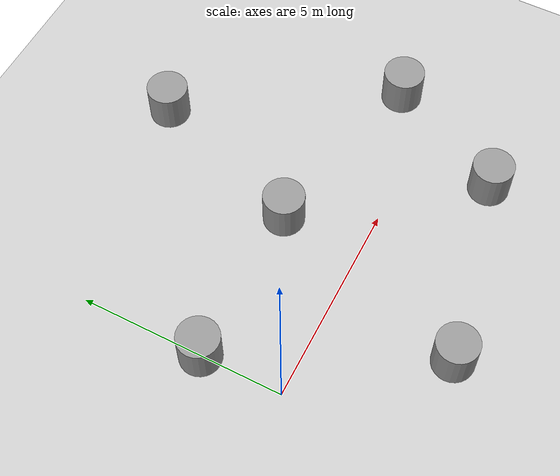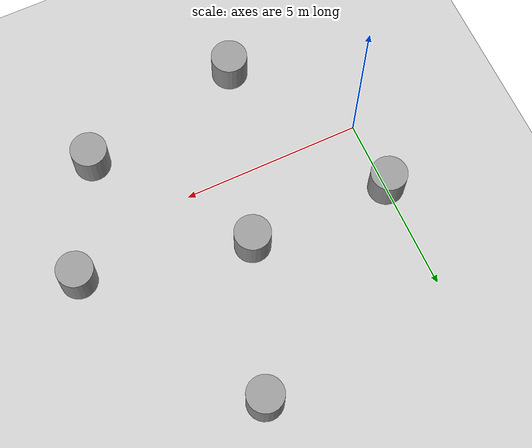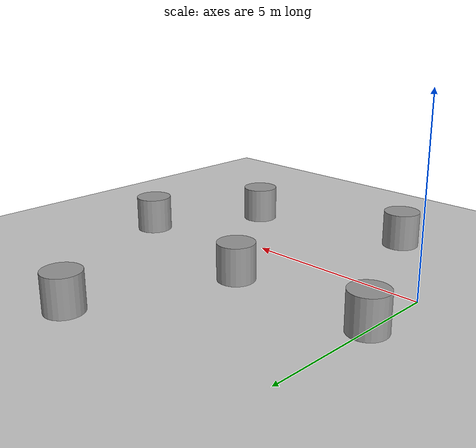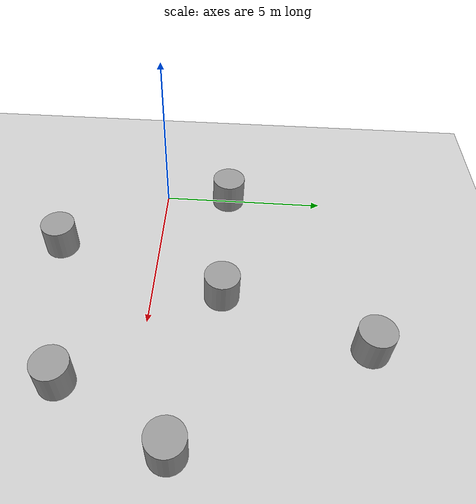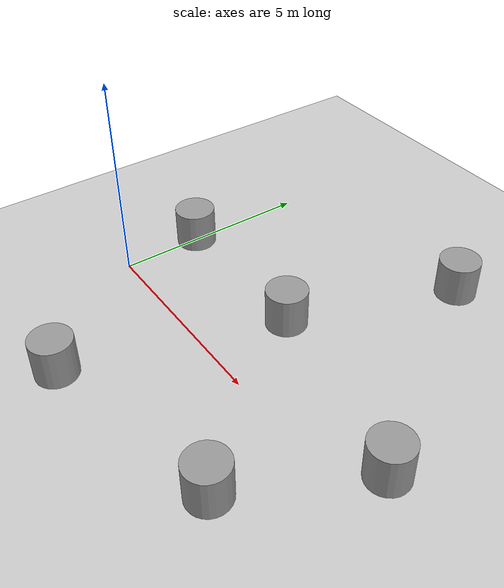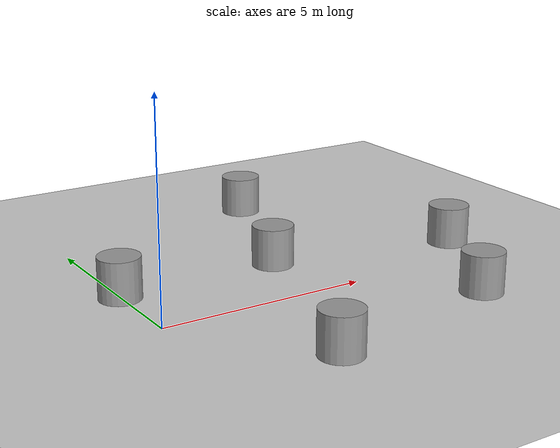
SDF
<sdf version="1.4">
 <world name="default">
  <light name="sun" type="directional">
   <pose>0 0 10 0 -0 0</pose>
   <diffuse>0.8 0.8 0.8 1</diffuse>
   <specular>0.2 0.2 0.2 1</specular>
   <attenuation>
    <range>1000</range>
    <constant>0.9</constant>
    <linear>0.01</linear>
    <quadratic>0.001</quadratic>
   </attenuation>
   <direction>-0.5 0.1 -0.9</direction>
  </light>
  <model name="ground_plane">
   <static>1</static>
   <link name="link">
    <collision name="collision">
     <geometry><plane><normal>0 0 1</normal><size>100 100</size></plane></geometry>
     <surface><friction><ode><mu>100</mu><mu2>50</mu2></ode></friction></surface>
    </collision>
    <visual name="visual">
     <cast_shadows>0</cast_shadows>
     <geometry><plane><normal>0 0 1</normal><size>100 100</size></plane></geometry>
     <material>
      <script><uri>file://media/materials/scripts/gazebo.material</uri><name>Gazebo/Grey</name></script>
     </material>
    </visual>
    <velocity_decay><linear>0</linear><angular>0</angular></velocity_decay>
   </link>
  </model>
  <physics type="ode">
   <max_step_size>0.001</max_step_size>
   <real_time_factor>1</real_time_factor>
   <real_time_update_rate>1000</real_time_update_rate>
   <gravity>0 0 -9.8</gravity>
  </physics>
  <scene><ambient>0.4 0.4 0.4 1</ambient><background>0.7 0.7 0.7 1</background><shadows>1</shadows></scene>
  <spherical_coordinates>
   <surface_model>EARTH_WGS84</surface_model>
   <latitude_deg>0</latitude_deg>
   <longitude_deg>0</longitude_deg>
   <elevation>0</elevation>
   <heading_deg>0</heading_deg>
  </spherical_coordinates>
  <model name="unit_cylinder_1">
   <pose>0 2 0.499998 1e-06 -0 0</pose>
   <link name="link">
    <inertial>
     <mass>1</mass>
     <inertia><ixx>1</ixx><ixy>0</ixy><ixz>0</ixz><iyy>1</iyy><iyz>0</iyz><izz>1</izz></inertia>
    </inertial>
    <collision name="collision">
     <geometry><cylinder><radius>0.5</radius><length>1</length></cylinder></geometry>
    </collision>
    <visual name="visual">
     <geometry><cylinder><radius>0.5</radius><length>1</length></cylinder></geometry>
     <material>
      <script><uri>file://media/materials/scripts/gazebo.material</uri><name>Gazebo/Grey</name></script>
     </material>
    </visual>
    <velocity_decay><linear>0</linear><angular>0</angular></velocity_decay>
   </link>
   <static>1</static>
  </model>
  <model name="unit_cylinder_2">
   <pose>4 2 0.499992 -1e-06 -0 0</pose>
   <link name="link">
    <inertial>
     <mass>1</mass>
     <inertia><ixx>1</ixx><ixy>0</ixy><ixz>0</ixz><iyy>1</iyy><iyz>0</iyz><izz>1</izz></inertia>
    </inertial>
    <collision name="collision">
     <geometry><cylinder><radius>0.5</radius><length>1</length></cylinder></geometry>
    </collision>
    <visual name="visual">
     <geometry><cylinder><radius>0.5</radius><length>1</length></cylinder></geometry>
     <material>
      <script><uri>file://media/materials/scripts/gazebo.material</uri><name>Gazebo/Grey</name></script>
     </material>
    </visual>
    <velocity_decay><linear>0</linear><angular>0</angular></velocity_decay>
   </link>
   <static>1</static>
  </model>
  <model name="unit_cylinder_3">
   <pose>2.41301 -3 0.499998 1e-06 -0 0</pose>
   <link name="link">
    <inertial>
     <mass>1</mass>
     <inertia><ixx>1</ixx><ixy>0</ixy><ixz>0</ixz><iyy>1</iyy><iyz>0</iyz><izz>1</izz></inertia>
    </inertial>
    <collision name="collision">
     <geometry><cylinder><radius>0.5</radius><length>1</length></cylinder></geometry>
    </collision>
    <visual name="visual">
     <geometry><cylinder><radius>0.5</radius><length>1</length></cylinder></geometry>
     <material>
      <script><uri>file://media/materials/scripts/gazebo.material</uri><name>Gazebo/Grey</name></script>
     </material>
    </visual>
    <velocity_decay><linear>0</linear><angular>0</angular></velocity_decay>
   </link>
   <static>1</static>
  </model>
  <model name="unit_cylinder_4">
   <pose>7 -2 0.499992 0 -0 0</pose>
   <link name="link">
    <inertial>
     <mass>1</mass>
     <inertia><ixx>1</ixx><ixy>0</ixy><ixz>0</ixz><iyy>1</iyy><iyz>0</iyz><izz>1</izz></inertia>
    </inertial>
    <collision name="collision">
     <geometry><cylinder><radius>0.5</radius><length>1</length></cylinder></geometry>
    </collision>
    <visual name="visual">
     <geometry><cylinder><radius>0.5</radius><length>1</length></cylinder></geometry>
     <material>
      <script><uri>file://media/materials/scripts/gazebo.material</uri><name>Gazebo/Grey</name></script>
     </material>
    </visual>
    <velocity_decay><linear>0</linear><angular>0</angular></velocity_decay>
   </link>
   <static>1</static>
  </model>
  <model name="unit_cylinder_5">
   <pose>5.49728 6 0.499998 0 -0 0</pose>
   <link name="link">
    <inertial>
     <mass>1</mass>
     <inertia><ixx>1</ixx><ixy>0</ixy><ixz>0</ixz><iyy>1</iyy><iyz>0</iyz><izz>1</izz></inertia>
    </inertial>
    <collision name="collision">
     <geometry><cylinder><radius>0.5</radius><length>1</length></cylinder></geometry>
    </collision>
    <visual name="visual">
     <geometry><cylinder><radius>0.5</radius><length>1</length></cylinder></geometry>
     <material>
      <script><uri>file://media/materials/scripts/gazebo.material</uri><name>Gazebo/Grey</name></script>
     </material>
    </visual>
    <velocity_decay><linear>0</linear><angular>0</angular></velocity_decay>
   </link>
   <static>1</static>
  </model>
  <model name="unit_cylinder_6">
   <pose>8.58434 1 0.499992 0 -0 0</pose>
   <link name="link">
    <inertial>
     <mass>1</mass>
     <inertia><ixx>1</ixx><ixy>0</ixy><ixz>0</ixz><iyy>1</iyy><iyz>0</iyz><izz>1</izz></inertia>
    </inertial>
    <collision name="collision">
     <geometry><cylinder><radius>0.5</radius><length>1</length></cylinder></geometry>
    </collision>
    <visual name="visual">
     <geometry><cylinder><radius>0.5</radius><length>1</length></cylinder></geometry>
     <material>
      <script><uri>file://media/materials/scripts/gazebo.material</uri><name>Gazebo/Grey</name></script>
     </material>
    </visual>
    <velocity_decay><linear>0</linear><angular>0</angular></velocity_decay>
   </link>
   <static>1</static>
  </model>
 </world>
</sdf>
